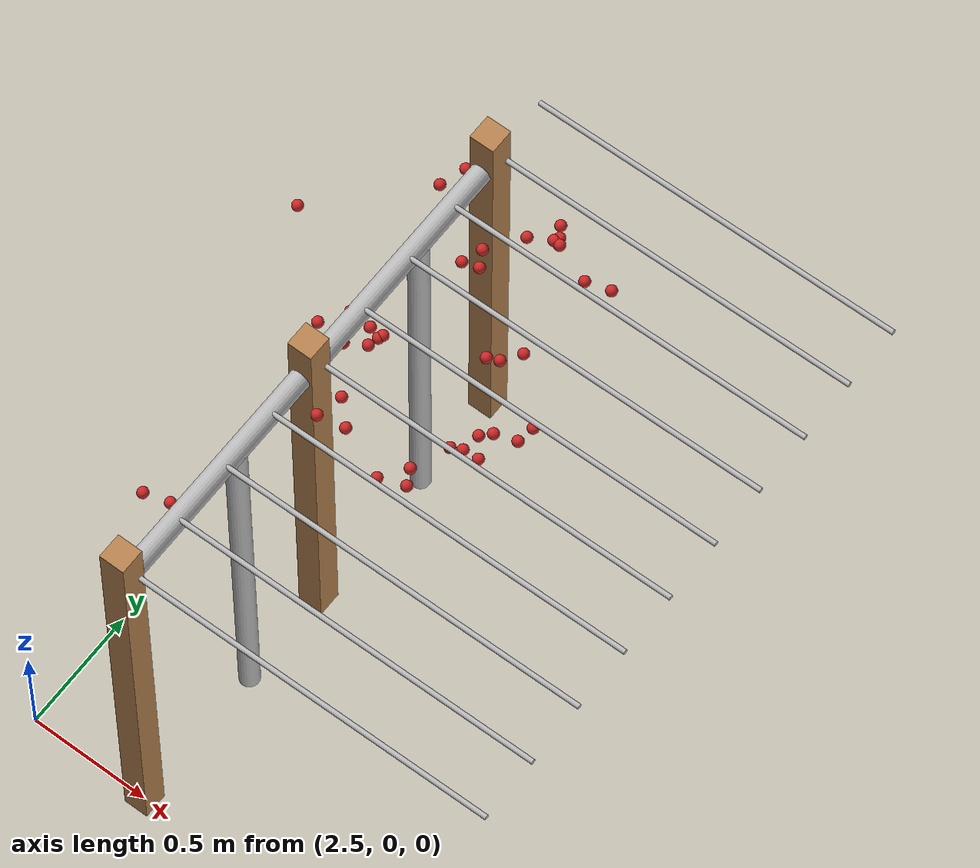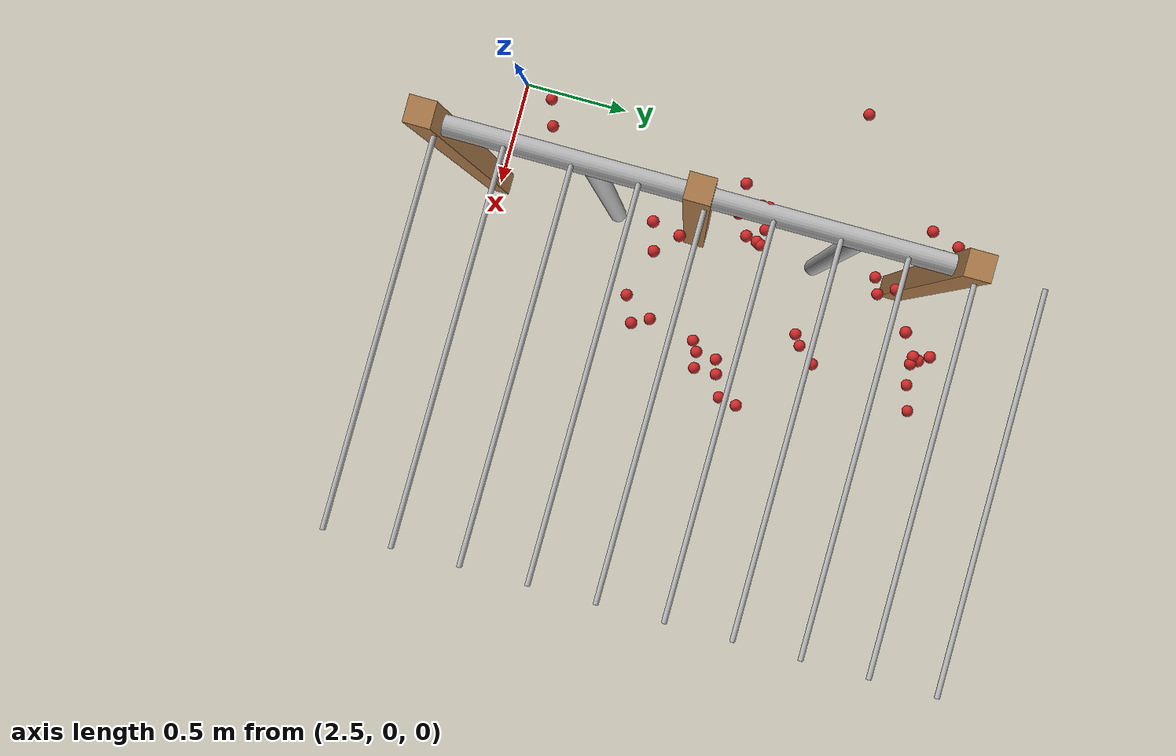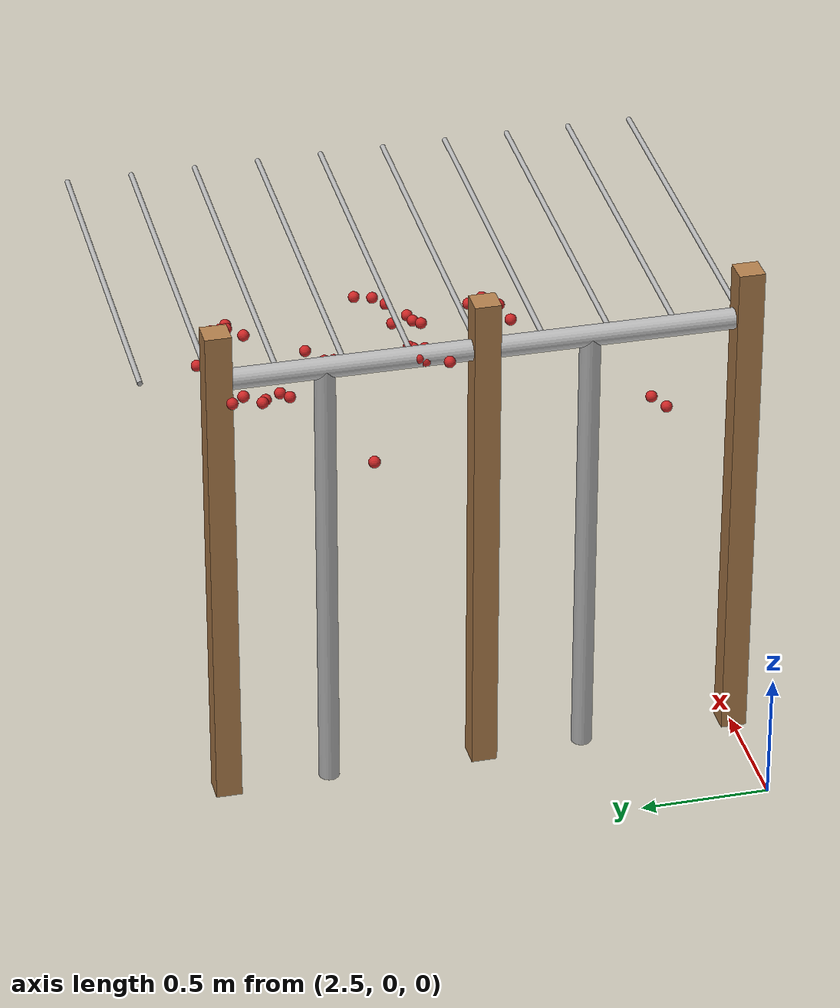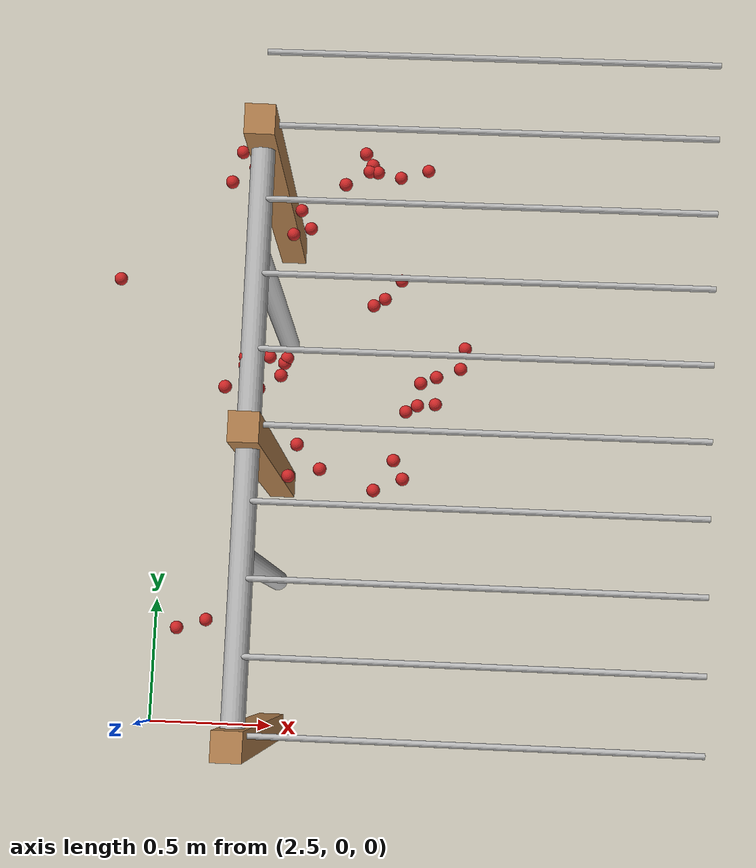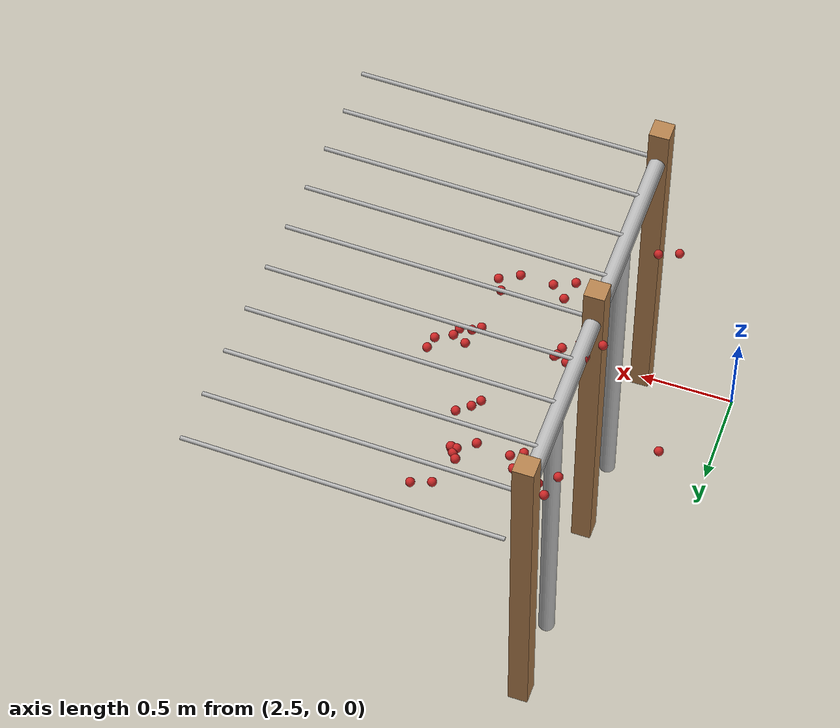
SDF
<sdf version="1.4">
 <model name="pergola">
  <include><name>post_6</name><pose>3.0 0.0 0 0 0 0</pose><uri>model://post</uri></include>
  <include><name>post_7</name><pose>3.0 1.0 0 0 0 0</pose><uri>model://post</uri></include>
  <include><name>post_8</name><pose>3.0 2.0 0 0 0 0</pose><uri>model://post</uri></include>
  <include><name>tree_5</name><pose>3.0 0.6 0 0 0 0</pose><uri>model://tree_trunk</uri></include>
  <include><name>tree_6</name><pose>3.0 1.6 0 0 0 0</pose><uri>model://tree_trunk</uri></include>
  <link name="baseBranch_5">
   <pose>3.0 0.5 1.8 1.5707963267948966 0 0</pose>
   <collision name="collision">
    <geometry><cylinder><radius>0.04</radius><length>1.0</length></cylinder></geometry>
   </collision>
   <visual name="visual">
    <geometry><cylinder><radius>0.04</radius><length>1.0</length></cylinder></geometry>
    <material>
     <script>
      <uri>model://tree_trunk/materials/scripts</uri>
      <uri>model://tree_trunk/materials/textures</uri>
      <name>Tree/Bark</name>
     </script>
    </material>
   </visual>
   <inertial>
    <mass>10</mass>
    <inertia>
     <ixx>0.8373333333333332</ixx>
     <ixy>0.0</ixy>
     <ixz>0.0</ixz>
     <iyy>0.8373333333333332</iyy>
     <iyz>0.0</iyz>
     <izz>0.008</izz>
    </inertia>
   </inertial>
  </link>
  <link name="baseBranch_6">
   <pose>3.0 1.5 1.8 1.5707963267948966 0 0</pose>
   <collision name="collision">
    <geometry><cylinder><radius>0.04</radius><length>1.0</length></cylinder></geometry>
   </collision>
   <visual name="visual">
    <geometry><cylinder><radius>0.04</radius><length>1.0</length></cylinder></geometry>
    <material>
     <script>
      <uri>model://tree_trunk/materials/scripts</uri>
      <uri>model://tree_trunk/materials/textures</uri>
      <name>Tree/Bark</name>
     </script>
    </material>
   </visual>
   <inertial>
    <mass>10</mass>
    <inertia>
     <ixx>0.8373333333333332</ixx>
     <ixy>0.0</ixy>
     <ixz>0.0</ixz>
     <iyy>0.8373333333333332</iyy>
     <iyz>0.0</iyz>
     <izz>0.008</izz>
    </inertia>
   </inertial>
  </link>
  <link name="vine_40">
   <pose>3.75 0.03 1.85 0 1.5374753309166493 0</pose>
   <collision name="collision">
    <geometry><cylinder><radius>0.01</radius><length>1.5008331019803633</length></cylinder></geometry>
   </collision>
   <visual name="visual">
    <geometry><cylinder><radius>0.01</radius><length>1.5008331019803633</length></cylinder></geometry>
    <material>
     <script>
      <uri>model://tree_trunk/materials/scripts</uri>
      <uri>model://tree_trunk/materials/textures</uri>
      <name>Tree/Bark</name>
     </script>
    </material>
   </visual>
   <inertial>
    <mass>5</mass>
    <inertia>
     <ixx>0.9386666666666668</ixx>
     <ixy>0.0</ixy>
     <ixz>0.0</ixz>
     <iyy>0.9386666666666668</iyy>
     <iyz>0.0</iyz>
     <izz>0.00025</izz>
    </inertia>
   </inertial>
  </link>
  <link name="vine_42">
   <pose>3.75 0.28 1.85 0 1.5374753309166493 0</pose>
   <collision name="collision">
    <geometry><cylinder><radius>0.01</radius><length>1.5008331019803633</length></cylinder></geometry>
   </collision>
   <visual name="visual">
    <geometry><cylinder><radius>0.01</radius><length>1.5008331019803633</length></cylinder></geometry>
    <material>
     <script>
      <uri>model://tree_trunk/materials/scripts</uri>
      <uri>model://tree_trunk/materials/textures</uri>
      <name>Tree/Bark</name>
     </script>
    </material>
   </visual>
   <inertial>
    <mass>5</mass>
    <inertia>
     <ixx>0.9386666666666668</ixx>
     <ixy>0.0</ixy>
     <ixz>0.0</ixz>
     <iyy>0.9386666666666668</iyy>
     <iyz>0.0</iyz>
     <izz>0.00025</izz>
    </inertia>
   </inertial>
  </link>
  <link name="vine_44">
   <pose>3.75 0.53 1.85 0 1.5374753309166493 0</pose>
   <collision name="collision">
    <geometry><cylinder><radius>0.01</radius><length>1.5008331019803633</length></cylinder></geometry>
   </collision>
   <visual name="visual">
    <geometry><cylinder><radius>0.01</radius><length>1.5008331019803633</length></cylinder></geometry>
    <material>
     <script>
      <uri>model://tree_trunk/materials/scripts</uri>
      <uri>model://tree_trunk/materials/textures</uri>
      <name>Tree/Bark</name>
     </script>
    </material>
   </visual>
   <inertial>
    <mass>5</mass>
    <inertia>
     <ixx>0.9386666666666668</ixx>
     <ixy>0.0</ixy>
     <ixz>0.0</ixz>
     <iyy>0.9386666666666668</iyy>
     <iyz>0.0</iyz>
     <izz>0.00025</izz>
    </inertia>
   </inertial>
  </link>
  <link name="vine_46">
   <pose>3.75 0.78 1.85 0 1.5374753309166493 0</pose>
   <collision name="collision">
    <geometry><cylinder><radius>0.01</radius><length>1.5008331019803633</length></cylinder></geometry>
   </collision>
   <visual name="visual">
    <geometry><cylinder><radius>0.01</radius><length>1.5008331019803633</length></cylinder></geometry>
    <material>
     <script>
      <uri>model://tree_trunk/materials/scripts</uri>
      <uri>model://tree_trunk/materials/textures</uri>
      <name>Tree/Bark</name>
     </script>
    </material>
   </visual>
   <inertial>
    <mass>5</mass>
    <inertia>
     <ixx>0.9386666666666668</ixx>
     <ixy>0.0</ixy>
     <ixz>0.0</ixz>
     <iyy>0.9386666666666668</iyy>
     <iyz>0.0</iyz>
     <izz>0.00025</izz>
    </inertia>
   </inertial>
  </link>
  <link name="vine_48">
   <pose>3.75 1.03 1.85 0 1.5374753309166493 0</pose>
   <collision name="collision">
    <geometry><cylinder><radius>0.01</radius><length>1.5008331019803633</length></cylinder></geometry>
   </collision>
   <visual name="visual">
    <geometry><cylinder><radius>0.01</radius><length>1.5008331019803633</length></cylinder></geometry>
    <material>
     <script>
      <uri>model://tree_trunk/materials/scripts</uri>
      <uri>model://tree_trunk/materials/textures</uri>
      <name>Tree/Bark</name>
     </script>
    </material>
   </visual>
   <inertial>
    <mass>5</mass>
    <inertia>
     <ixx>0.9386666666666668</ixx>
     <ixy>0.0</ixy>
     <ixz>0.0</ixz>
     <iyy>0.9386666666666668</iyy>
     <iyz>0.0</iyz>
     <izz>0.00025</izz>
    </inertia>
   </inertial>
  </link>
  <link name="vine_50">
   <pose>3.75 1.28 1.85 0 1.5374753309166493 0</pose>
   <collision name="collision">
    <geometry><cylinder><radius>0.01</radius><length>1.5008331019803633</length></cylinder></geometry>
   </collision>
   <visual name="visual">
    <geometry><cylinder><radius>0.01</radius><length>1.5008331019803633</length></cylinder></geometry>
    <material>
     <script>
      <uri>model://tree_trunk/materials/scripts</uri>
      <uri>model://tree_trunk/materials/textures</uri>
      <name>Tree/Bark</name>
     </script>
    </material>
   </visual>
   <inertial>
    <mass>5</mass>
    <inertia>
     <ixx>0.9386666666666668</ixx>
     <ixy>0.0</ixy>
     <ixz>0.0</ixz>
     <iyy>0.9386666666666668</iyy>
     <iyz>0.0</iyz>
     <izz>0.00025</izz>
    </inertia>
   </inertial>
  </link>
  <link name="vine_52">
   <pose>3.75 1.53 1.85 0 1.5374753309166493 0</pose>
   <collision name="collision">
    <geometry><cylinder><radius>0.01</radius><length>1.5008331019803633</length></cylinder></geometry>
   </collision>
   <visual name="visual">
    <geometry><cylinder><radius>0.01</radius><length>1.5008331019803633</length></cylinder></geometry>
    <material>
     <script>
      <uri>model://tree_trunk/materials/scripts</uri>
      <uri>model://tree_trunk/materials/textures</uri>
      <name>Tree/Bark</name>
     </script>
    </material>
   </visual>
   <inertial>
    <mass>5</mass>
    <inertia>
     <ixx>0.9386666666666668</ixx>
     <ixy>0.0</ixy>
     <ixz>0.0</ixz>
     <iyy>0.9386666666666668</iyy>
     <iyz>0.0</iyz>
     <izz>0.00025</izz>
    </inertia>
   </inertial>
  </link>
  <link name="vine_54">
   <pose>3.75 1.78 1.85 0 1.5374753309166493 0</pose>
   <collision name="collision">
    <geometry><cylinder><radius>0.01</radius><length>1.5008331019803633</length></cylinder></geometry>
   </collision>
   <visual name="visual">
    <geometry><cylinder><radius>0.01</radius><length>1.5008331019803633</length></cylinder></geometry>
    <material>
     <script>
      <uri>model://tree_trunk/materials/scripts</uri>
      <uri>model://tree_trunk/materials/textures</uri>
      <name>Tree/Bark</name>
     </script>
    </material>
   </visual>
   <inertial>
    <mass>5</mass>
    <inertia>
     <ixx>0.9386666666666668</ixx>
     <ixy>0.0</ixy>
     <ixz>0.0</ixz>
     <iyy>0.9386666666666668</iyy>
     <iyz>0.0</iyz>
     <izz>0.00025</izz>
    </inertia>
   </inertial>
  </link>
  <link name="vine_56">
   <pose>3.75 2.03 1.85 0 1.5374753309166493 0</pose>
   <collision name="collision">
    <geometry><cylinder><radius>0.01</radius><length>1.5008331019803633</length></cylinder></geometry>
   </collision>
   <visual name="visual">
    <geometry><cylinder><radius>0.01</radius><length>1.5008331019803633</length></cylinder></geometry>
    <material>
     <script>
      <uri>model://tree_trunk/materials/scripts</uri>
      <uri>model://tree_trunk/materials/textures</uri>
      <name>Tree/Bark</name>
     </script>
    </material>
   </visual>
   <inertial>
    <mass>5</mass>
    <inertia>
     <ixx>0.9386666666666668</ixx>
     <ixy>0.0</ixy>
     <ixz>0.0</ixz>
     <iyy>0.9386666666666668</iyy>
     <iyz>0.0</iyz>
     <izz>0.00025</izz>
    </inertia>
   </inertial>
  </link>
  <link name="vine_58">
   <pose>3.75 2.28 1.85 0 1.5374753309166493 0</pose>
   <collision name="collision">
    <geometry><cylinder><radius>0.01</radius><length>1.5008331019803633</length></cylinder></geometry>
   </collision>
   <visual name="visual">
    <geometry><cylinder><radius>0.01</radius><length>1.5008331019803633</length></cylinder></geometry>
    <material>
     <script>
      <uri>model://tree_trunk/materials/scripts</uri>
      <uri>model://tree_trunk/materials/textures</uri>
      <name>Tree/Bark</name>
     </script>
    </material>
   </visual>
   <inertial>
    <mass>5</mass>
    <inertia>
     <ixx>0.9386666666666668</ixx>
     <ixy>0.0</ixy>
     <ixz>0.0</ixz>
     <iyy>0.9386666666666668</iyy>
     <iyz>0.0</iyz>
     <izz>0.00025</izz>
    </inertia>
   </inertial>
  </link>
  <link name="fruit_13">
   <pose>3.6070455008905733 1.2300840165753737 1.6837658293401834 0 0 0</pose>
   <collision name="fruit_collision_13"><geometry><sphere><radius>0.022</radius></sphere></geometry></collision>
   <visual name="visual">
    <geometry><sphere><radius>0.022</radius></sphere></geometry>
    <material><script><name>Gazebo/Red</name></script></material>
   </visual>
   <inertial>
    <mass>0.05</mass>
    <inertia>
     <ixx>9.679999999999999e-06</ixx>
     <ixy>0.0</ixy>
     <ixz>0.0</ixz>
     <iyy>9.679999999999999e-06</iyy>
     <iyz>0.0</iyz>
     <izz>9.679999999999999e-06</izz>
    </inertia>
   </inertial>
   <sensor name="fruit_contact_13" type="contact">
    <plugin name="contact_plugin_13" filename="libcontact_plugin.so"/>
    <contact><collision>fruit_collision_13</collision><topic>fruit_contact_topic_13</topic></contact>
   </sensor>
  </link>
  <link name="fruit_24">
   <pose>2.917120511215333 1.1515800005456673 1.8088075330249582 0 0 0</pose>
   <collision name="fruit_collision_24"><geometry><sphere><radius>0.022</radius></sphere></geometry></collision>
   <visual name="visual">
    <geometry><sphere><radius>0.022</radius></sphere></geometry>
    <material><script><name>Gazebo/Red</name></script></material>
   </visual>
   <inertial>
    <mass>0.05</mass>
    <inertia>
     <ixx>9.679999999999999e-06</ixx>
     <ixy>0.0</ixy>
     <ixz>0.0</ixz>
     <iyy>9.679999999999999e-06</iyy>
     <iyz>0.0</iyz>
     <izz>9.679999999999999e-06</izz>
    </inertia>
   </inertial>
   <sensor name="fruit_contact_24" type="contact">
    <plugin name="contact_plugin_24" filename="libcontact_plugin.so"/>
    <contact><collision>fruit_collision_24</collision><topic>fruit_contact_topic_24</topic></contact>
   </sensor>
  </link>
  <link name="fruit_26">
   <pose>2.898086937691116 1.851858706649772 1.7446800675082137 0 0 0</pose>
   <collision name="fruit_collision_26"><geometry><sphere><radius>0.022</radius></sphere></geometry></collision>
   <visual name="visual">
    <geometry><sphere><radius>0.022</radius></sphere></geometry>
    <material><script><name>Gazebo/Red</name></script></material>
   </visual>
   <inertial>
    <mass>0.05</mass>
    <inertia>
     <ixx>9.679999999999999e-06</ixx>
     <ixy>0.0</ixy>
     <ixz>0.0</ixz>
     <iyy>9.679999999999999e-06</iyy>
     <iyz>0.0</iyz>
     <izz>9.679999999999999e-06</izz>
    </inertia>
   </inertial>
   <sensor name="fruit_contact_26" type="contact">
    <plugin name="contact_plugin_26" filename="libcontact_plugin.so"/>
    <contact><collision>fruit_collision_26</collision><topic>fruit_contact_topic_26</topic></contact>
   </sensor>
  </link>
  <link name="fruit_29">
   <pose>3.4585167013735956 1.939055679679138 1.5507530507339389 0 0 0</pose>
   <collision name="fruit_collision_29"><geometry><sphere><radius>0.022</radius></sphere></geometry></collision>
   <visual name="visual">
    <geometry><sphere><radius>0.022</radius></sphere></geometry>
    <material><script><name>Gazebo/Red</name></script></material>
   </visual>
   <inertial>
    <mass>0.05</mass>
    <inertia>
     <ixx>9.679999999999999e-06</ixx>
     <ixy>0.0</ixy>
     <ixz>0.0</ixz>
     <iyy>9.679999999999999e-06</iyy>
     <iyz>0.0</iyz>
     <izz>9.679999999999999e-06</izz>
    </inertia>
   </inertial>
   <sensor name="fruit_contact_29" type="contact">
    <plugin name="contact_plugin_29" filename="libcontact_plugin.so"/>
    <contact><collision>fruit_collision_29</collision><topic>fruit_contact_topic_29</topic></contact>
   </sensor>
  </link>
  <link name="fruit_42">
   <pose>3.1382005773098425 0.8662178532702873 1.8265389740597155 0 0 0</pose>
   <collision name="fruit_collision_42"><geometry><sphere><radius>0.022</radius></sphere></geometry></collision>
   <visual name="visual">
    <geometry><sphere><radius>0.022</radius></sphere></geometry>
    <material><script><name>Gazebo/Red</name></script></material>
   </visual>
   <inertial>
    <mass>0.05</mass>
    <inertia>
     <ixx>9.679999999999999e-06</ixx>
     <ixy>0.0</ixy>
     <ixz>0.0</ixz>
     <iyy>9.679999999999999e-06</iyy>
     <iyz>0.0</iyz>
     <izz>9.679999999999999e-06</izz>
    </inertia>
   </inertial>
   <sensor name="fruit_contact_42" type="contact">
    <plugin name="contact_plugin_42" filename="libcontact_plugin.so"/>
    <contact><collision>fruit_collision_42</collision><topic>fruit_contact_topic_42</topic></contact>
   </sensor>
  </link>
  <link name="fruit_47">
   <pose>2.7779957327651794 0.36682642251950465 1.5920235518906722 0 0 0</pose>
   <collision name="fruit_collision_47"><geometry><sphere><radius>0.022</radius></sphere></geometry></collision>
   <visual name="visual">
    <geometry><sphere><radius>0.022</radius></sphere></geometry>
    <material><script><name>Gazebo/Red</name></script></material>
   </visual>
   <inertial>
    <mass>0.05</mass>
    <inertia>
     <ixx>9.679999999999999e-06</ixx>
     <ixy>0.0</ixy>
     <ixz>0.0</ixz>
     <iyy>9.679999999999999e-06</iyy>
     <iyz>0.0</iyz>
     <izz>9.679999999999999e-06</izz>
    </inertia>
   </inertial>
   <sensor name="fruit_contact_47" type="contact">
    <plugin name="contact_plugin_47" filename="libcontact_plugin.so"/>
    <contact><collision>fruit_collision_47</collision><topic>fruit_contact_topic_47</topic></contact>
   </sensor>
  </link>
  <link name="fruit_55">
   <pose>3.0244347017362707 1.153597432893648 1.77924034173215 0 0 0</pose>
   <collision name="fruit_collision_55"><geometry><sphere><radius>0.022</radius></sphere></geometry></collision>
   <visual name="visual">
    <geometry><sphere><radius>0.022</radius></sphere></geometry>
    <material><script><name>Gazebo/Red</name></script></material>
   </visual>
   <inertial>
    <mass>0.05</mass>
    <inertia>
     <ixx>9.679999999999999e-06</ixx>
     <ixy>0.0</ixy>
     <ixz>0.0</ixz>
     <iyy>9.679999999999999e-06</iyy>
     <iyz>0.0</iyz>
     <izz>9.679999999999999e-06</izz>
    </inertia>
   </inertial>
   <sensor name="fruit_contact_55" type="contact">
    <plugin name="contact_plugin_55" filename="libcontact_plugin.so"/>
    <contact><collision>fruit_collision_55</collision><topic>fruit_contact_topic_55</topic></contact>
   </sensor>
  </link>
  <link name="fruit_88">
   <pose>3.5094107822425316 1.1161633936437858 1.6393341582841479 0 0 0</pose>
   <collision name="fruit_collision_88"><geometry><sphere><radius>0.022</radius></sphere></geometry></collision>
   <visual name="visual">
    <geometry><sphere><radius>0.022</radius></sphere></geometry>
    <material><script><name>Gazebo/Red</name></script></material>
   </visual>
   <inertial>
    <mass>0.05</mass>
    <inertia>
     <ixx>9.679999999999999e-06</ixx>
     <ixy>0.0</ixy>
     <ixz>0.0</ixz>
     <iyy>9.679999999999999e-06</iyy>
     <iyz>0.0</iyz>
     <izz>9.679999999999999e-06</izz>
    </inertia>
   </inertial>
   <sensor name="fruit_contact_88" type="contact">
    <plugin name="contact_plugin_88" filename="libcontact_plugin.so"/>
    <contact><collision>fruit_collision_88</collision><topic>fruit_contact_topic_88</topic></contact>
   </sensor>
  </link>
  <link name="fruit_122">
   <pose>3.1037765207381027 1.7078859380675588 1.6309771468473413 0 0 0</pose>
   <collision name="fruit_collision_122"><geometry><sphere><radius>0.022</radius></sphere></geometry></collision>
   <visual name="visual">
    <geometry><sphere><radius>0.022</radius></sphere></geometry>
    <material><script><name>Gazebo/Red</name></script></material>
   </visual>
   <inertial>
    <mass>0.05</mass>
    <inertia>
     <ixx>9.679999999999999e-06</ixx>
     <ixy>0.0</ixy>
     <ixz>0.0</ixz>
     <iyy>9.679999999999999e-06</iyy>
     <iyz>0.0</iyz>
     <izz>9.679999999999999e-06</izz>
    </inertia>
   </inertial>
   <sensor name="fruit_contact_122" type="contact">
    <plugin name="contact_plugin_122" filename="libcontact_plugin.so"/>
    <contact><collision>fruit_collision_122</collision><topic>fruit_contact_topic_122</topic></contact>
   </sensor>
  </link>
  <link name="fruit_133">
   <pose>3.3854332978373565 1.4799477815049202 1.5982125163389522 0 0 0</pose>
   <collision name="fruit_collision_133"><geometry><sphere><radius>0.022</radius></sphere></geometry></collision>
   <visual name="visual">
    <geometry><sphere><radius>0.022</radius></sphere></geometry>
    <material><script><name>Gazebo/Red</name></script></material>
   </visual>
   <inertial>
    <mass>0.05</mass>
    <inertia>
     <ixx>9.679999999999999e-06</ixx>
     <ixy>0.0</ixy>
     <ixz>0.0</ixz>
     <iyy>9.679999999999999e-06</iyy>
     <iyz>0.0</iyz>
     <izz>9.679999999999999e-06</izz>
    </inertia>
   </inertial>
   <sensor name="fruit_contact_133" type="contact">
    <plugin name="contact_plugin_133" filename="libcontact_plugin.so"/>
    <contact><collision>fruit_collision_133</collision><topic>fruit_contact_topic_133</topic></contact>
   </sensor>
  </link>
  <link name="fruit_139">
   <pose>3.4138636948243413 0.8392183826972964 1.7345323251170426 0 0 0</pose>
   <collision name="fruit_collision_139"><geometry><sphere><radius>0.022</radius></sphere></geometry></collision>
   <visual name="visual">
    <geometry><sphere><radius>0.022</radius></sphere></geometry>
    <material><script><name>Gazebo/Red</name></script></material>
   </visual>
   <inertial>
    <mass>0.05</mass>
    <inertia>
     <ixx>9.679999999999999e-06</ixx>
     <ixy>0.0</ixy>
     <ixz>0.0</ixz>
     <iyy>9.679999999999999e-06</iyy>
     <iyz>0.0</iyz>
     <izz>9.679999999999999e-06</izz>
    </inertia>
   </inertial>
   <sensor name="fruit_contact_139" type="contact">
    <plugin name="contact_plugin_139" filename="libcontact_plugin.so"/>
    <contact><collision>fruit_collision_139</collision><topic>fruit_contact_topic_139</topic></contact>
   </sensor>
  </link>
  <link name="fruit_150">
   <pose>3.280158246227054 1.8420424714277035 1.8107419304058632 0 0 0</pose>
   <collision name="fruit_collision_150"><geometry><sphere><radius>0.022</radius></sphere></geometry></collision>
   <visual name="visual">
    <geometry><sphere><radius>0.022</radius></sphere></geometry>
    <material><script><name>Gazebo/Red</name></script></material>
   </visual>
   <inertial>
    <mass>0.05</mass>
    <inertia>
     <ixx>9.679999999999999e-06</ixx>
     <ixy>0.0</ixy>
     <ixz>0.0</ixz>
     <iyy>9.679999999999999e-06</iyy>
     <iyz>0.0</iyz>
     <izz>9.679999999999999e-06</izz>
    </inertia>
   </inertial>
   <sensor name="fruit_contact_150" type="contact">
    <plugin name="contact_plugin_150" filename="libcontact_plugin.so"/>
    <contact><collision>fruit_collision_150</collision><topic>fruit_contact_topic_150</topic></contact>
   </sensor>
  </link>
  <link name="fruit_154">
   <pose>2.5332713940371154 1.5233066768944616 1.66354003682544 0 0 0</pose>
   <collision name="fruit_collision_154"><geometry><sphere><radius>0.022</radius></sphere></geometry></collision>
   <visual name="visual">
    <geometry><sphere><radius>0.022</radius></sphere></geometry>
    <material><script><name>Gazebo/Red</name></script></material>
   </visual>
   <inertial>
    <mass>0.05</mass>
    <inertia>
     <ixx>9.679999999999999e-06</ixx>
     <ixy>0.0</ixy>
     <ixz>0.0</ixz>
     <iyy>9.679999999999999e-06</iyy>
     <iyz>0.0</iyz>
     <izz>9.679999999999999e-06</izz>
    </inertia>
   </inertial>
   <sensor name="fruit_contact_154" type="contact">
    <plugin name="contact_plugin_154" filename="libcontact_plugin.so"/>
    <contact><collision>fruit_collision_154</collision><topic>fruit_contact_topic_154</topic></contact>
   </sensor>
  </link>
  <link name="fruit_160">
   <pose>3.3845578497210353 1.8891554138268125 1.8030403169744178 0 0 0</pose>
   <collision name="fruit_collision_160"><geometry><sphere><radius>0.022</radius></sphere></geometry></collision>
   <visual name="visual">
    <geometry><sphere><radius>0.022</radius></sphere></geometry>
    <material><script><name>Gazebo/Red</name></script></material>
   </visual>
   <inertial>
    <mass>0.05</mass>
    <inertia>
     <ixx>9.679999999999999e-06</ixx>
     <ixy>0.0</ixy>
     <ixz>0.0</ixz>
     <iyy>9.679999999999999e-06</iyy>
     <iyz>0.0</iyz>
     <izz>9.679999999999999e-06</izz>
    </inertia>
   </inertial>
   <sensor name="fruit_contact_160" type="contact">
    <plugin name="contact_plugin_160" filename="libcontact_plugin.so"/>
    <contact><collision>fruit_collision_160</collision><topic>fruit_contact_topic_160</topic></contact>
   </sensor>
  </link>
  <link name="fruit_167">
   <pose>3.6987269483106022 1.3314125085197401 1.6769843129602904 0 0 0</pose>
   <collision name="fruit_collision_167"><geometry><sphere><radius>0.022</radius></sphere></geometry></collision>
   <visual name="visual">
    <geometry><sphere><radius>0.022</radius></sphere></geometry>
    <material><script><name>Gazebo/Red</name></script></material>
   </visual>
   <inertial>
    <mass>0.05</mass>
    <inertia>
     <ixx>9.679999999999999e-06</ixx>
     <ixy>0.0</ixy>
     <ixz>0.0</ixz>
     <iyy>9.679999999999999e-06</iyy>
     <iyz>0.0</iyz>
     <izz>9.679999999999999e-06</izz>
    </inertia>
   </inertial>
   <sensor name="fruit_contact_167" type="contact">
    <plugin name="contact_plugin_167" filename="libcontact_plugin.so"/>
    <contact><collision>fruit_collision_167</collision><topic>fruit_contact_topic_167</topic></contact>
   </sensor>
  </link>
  <link name="fruit_180">
   <pose>3.0150394310402158 1.2524880325697603 1.805783368348586 0 0 0</pose>
   <collision name="fruit_collision_180"><geometry><sphere><radius>0.022</radius></sphere></geometry></collision>
   <visual name="visual">
    <geometry><sphere><radius>0.022</radius></sphere></geometry>
    <material><script><name>Gazebo/Red</name></script></material>
   </visual>
   <inertial>
    <mass>0.05</mass>
    <inertia>
     <ixx>9.679999999999999e-06</ixx>
     <ixy>0.0</ixy>
     <ixz>0.0</ixz>
     <iyy>9.679999999999999e-06</iyy>
     <iyz>0.0</iyz>
     <izz>9.679999999999999e-06</izz>
    </inertia>
   </inertial>
   <sensor name="fruit_contact_180" type="contact">
    <plugin name="contact_plugin_180" filename="libcontact_plugin.so"/>
    <contact><collision>fruit_collision_180</collision><topic>fruit_contact_topic_180</topic></contact>
   </sensor>
  </link>
  <link name="fruit_196">
   <pose>3.4225927697186673 1.5077483263816136 1.5781392333230295 0 0 0</pose>
   <collision name="fruit_collision_196"><geometry><sphere><radius>0.022</radius></sphere></geometry></collision>
   <visual name="visual">
    <geometry><sphere><radius>0.022</radius></sphere></geometry>
    <material><script><name>Gazebo/Red</name></script></material>
   </visual>
   <inertial>
    <mass>0.05</mass>
    <inertia>
     <ixx>9.679999999999999e-06</ixx>
     <ixy>0.0</ixy>
     <ixz>0.0</ixz>
     <iyy>9.679999999999999e-06</iyy>
     <iyz>0.0</iyz>
     <izz>9.679999999999999e-06</izz>
    </inertia>
   </inertial>
   <sensor name="fruit_contact_196" type="contact">
    <plugin name="contact_plugin_196" filename="libcontact_plugin.so"/>
    <contact><collision>fruit_collision_196</collision><topic>fruit_contact_topic_196</topic></contact>
   </sensor>
  </link>
  <link name="fruit_202">
   <pose>3.094902093531147 1.201172119151739 1.7734514283640548 0 0 0</pose>
   <collision name="fruit_collision_202"><geometry><sphere><radius>0.022</radius></sphere></geometry></collision>
   <visual name="visual">
    <geometry><sphere><radius>0.022</radius></sphere></geometry>
    <material><script><name>Gazebo/Red</name></script></material>
   </visual>
   <inertial>
    <mass>0.05</mass>
    <inertia>
     <ixx>9.679999999999999e-06</ixx>
     <ixy>0.0</ixy>
     <ixz>0.0</ixz>
     <iyy>9.679999999999999e-06</iyy>
     <iyz>0.0</iyz>
     <izz>9.679999999999999e-06</izz>
    </inertia>
   </inertial>
   <sensor name="fruit_contact_202" type="contact">
    <plugin name="contact_plugin_202" filename="libcontact_plugin.so"/>
    <contact><collision>fruit_collision_202</collision><topic>fruit_contact_topic_202</topic></contact>
   </sensor>
  </link>
  <link name="fruit_212">
   <pose>3.1621282554759613 0.9700209263742554 1.8261377971677826 0 0 0</pose>
   <collision name="fruit_collision_212"><geometry><sphere><radius>0.022</radius></sphere></geometry></collision>
   <visual name="visual">
    <geometry><sphere><radius>0.022</radius></sphere></geometry>
    <material><script><name>Gazebo/Red</name></script></material>
   </visual>
   <inertial>
    <mass>0.05</mass>
    <inertia>
     <ixx>9.679999999999999e-06</ixx>
     <ixy>0.0</ixy>
     <ixz>0.0</ixz>
     <iyy>9.679999999999999e-06</iyy>
     <iyz>0.0</iyz>
     <izz>9.679999999999999e-06</izz>
    </inertia>
   </inertial>
   <sensor name="fruit_contact_212" type="contact">
    <plugin name="contact_plugin_212" filename="libcontact_plugin.so"/>
    <contact><collision>fruit_collision_212</collision><topic>fruit_contact_topic_212</topic></contact>
   </sensor>
  </link>
  <link name="fruit_221">
   <pose>2.972936768662098 1.9072773614292877 1.735332152135021 0 0 0</pose>
   <collision name="fruit_collision_221"><geometry><sphere><radius>0.022</radius></sphere></geometry></collision>
   <visual name="visual">
    <geometry><sphere><radius>0.022</radius></sphere></geometry>
    <material><script><name>Gazebo/Red</name></script></material>
   </visual>
   <inertial>
    <mass>0.05</mass>
    <inertia>
     <ixx>9.679999999999999e-06</ixx>
     <ixy>0.0</ixy>
     <ixz>0.0</ixz>
     <iyy>9.679999999999999e-06</iyy>
     <iyz>0.0</iyz>
     <izz>9.679999999999999e-06</izz>
    </inertia>
   </inertial>
   <sensor name="fruit_contact_221" type="contact">
    <plugin name="contact_plugin_221" filename="libcontact_plugin.so"/>
    <contact><collision>fruit_collision_221</collision><topic>fruit_contact_topic_221</topic></contact>
   </sensor>
  </link>
  <link name="fruit_237">
   <pose>2.9284135741813957 1.95707892950702 1.737734749686442 0 0 0</pose>
   <collision name="fruit_collision_237"><geometry><sphere><radius>0.022</radius></sphere></geometry></collision>
   <visual name="visual">
    <geometry><sphere><radius>0.022</radius></sphere></geometry>
    <material><script><name>Gazebo/Red</name></script></material>
   </visual>
   <inertial>
    <mass>0.05</mass>
    <inertia>
     <ixx>9.679999999999999e-06</ixx>
     <ixy>0.0</ixy>
     <ixz>0.0</ixz>
     <iyy>9.679999999999999e-06</iyy>
     <iyz>0.0</iyz>
     <izz>9.679999999999999e-06</izz>
    </inertia>
   </inertial>
   <sensor name="fruit_contact_237" type="contact">
    <plugin name="contact_plugin_237" filename="libcontact_plugin.so"/>
    <contact><collision>fruit_collision_237</collision><topic>fruit_contact_topic_237</topic></contact>
   </sensor>
  </link>
  <link name="fruit_238">
   <pose>2.9773925539750916 1.2272454604954492 1.791368946226316 0 0 0</pose>
   <collision name="fruit_collision_238"><geometry><sphere><radius>0.022</radius></sphere></geometry></collision>
   <visual name="visual">
    <geometry><sphere><radius>0.022</radius></sphere></geometry>
    <material><script><name>Gazebo/Red</name></script></material>
   </visual>
   <inertial>
    <mass>0.05</mass>
    <inertia>
     <ixx>9.679999999999999e-06</ixx>
     <ixy>0.0</ixy>
     <ixz>0.0</ixz>
     <iyy>9.679999999999999e-06</iyy>
     <iyz>0.0</iyz>
     <izz>9.679999999999999e-06</izz>
    </inertia>
   </inertial>
   <sensor name="fruit_contact_238" type="contact">
    <plugin name="contact_plugin_238" filename="libcontact_plugin.so"/>
    <contact><collision>fruit_collision_238</collision><topic>fruit_contact_topic_238</topic></contact>
   </sensor>
  </link>
  <link name="fruit_240">
   <pose>3.5551368114321265 1.21658038435728 1.626251568671813 0 0 0</pose>
   <collision name="fruit_collision_240"><geometry><sphere><radius>0.022</radius></sphere></geometry></collision>
   <visual name="visual">
    <geometry><sphere><radius>0.022</radius></sphere></geometry>
    <material><script><name>Gazebo/Red</name></script></material>
   </visual>
   <inertial>
    <mass>0.05</mass>
    <inertia>
     <ixx>9.679999999999999e-06</ixx>
     <ixy>0.0</ixy>
     <ixz>0.0</ixz>
     <iyy>9.679999999999999e-06</iyy>
     <iyz>0.0</iyz>
     <izz>9.679999999999999e-06</izz>
    </inertia>
   </inertial>
   <sensor name="fruit_contact_240" type="contact">
    <plugin name="contact_plugin_240" filename="libcontact_plugin.so"/>
    <contact><collision>fruit_collision_240</collision><topic>fruit_contact_topic_240</topic></contact>
   </sensor>
  </link>
  <link name="fruit_251">
   <pose>3.6864038083729636 1.263128370723643 1.671284777240697 0 0 0</pose>
   <collision name="fruit_collision_251"><geometry><sphere><radius>0.022</radius></sphere></geometry></collision>
   <visual name="visual">
    <geometry><sphere><radius>0.022</radius></sphere></geometry>
    <material><script><name>Gazebo/Red</name></script></material>
   </visual>
   <inertial>
    <mass>0.05</mass>
    <inertia>
     <ixx>9.679999999999999e-06</ixx>
     <ixy>0.0</ixy>
     <ixz>0.0</ixz>
     <iyy>9.679999999999999e-06</iyy>
     <iyz>0.0</iyz>
     <izz>9.679999999999999e-06</izz>
    </inertia>
   </inertial>
   <sensor name="fruit_contact_251" type="contact">
    <plugin name="contact_plugin_251" filename="libcontact_plugin.so"/>
    <contact><collision>fruit_collision_251</collision><topic>fruit_contact_topic_251</topic></contact>
   </sensor>
  </link>
  <link name="fruit_265">
   <pose>3.3574921760088037 1.8916243632347034 1.8026224546753111 0 0 0</pose>
   <collision name="fruit_collision_265"><geometry><sphere><radius>0.022</radius></sphere></geometry></collision>
   <visual name="visual">
    <geometry><sphere><radius>0.022</radius></sphere></geometry>
    <material><script><name>Gazebo/Red</name></script></material>
   </visual>
   <inertial>
    <mass>0.05</mass>
    <inertia>
     <ixx>9.679999999999999e-06</ixx>
     <ixy>0.0</ixy>
     <ixz>0.0</ixz>
     <iyy>9.679999999999999e-06</iyy>
     <iyz>0.0</iyz>
     <izz>9.679999999999999e-06</izz>
    </inertia>
   </inertial>
   <sensor name="fruit_contact_265" type="contact">
    <plugin name="contact_plugin_265" filename="libcontact_plugin.so"/>
    <contact><collision>fruit_collision_265</collision><topic>fruit_contact_topic_265</topic></contact>
   </sensor>
  </link>
  <link name="fruit_276">
   <pose>3.113309508210805 1.2580284965034978 1.7783928749012863 0 0 0</pose>
   <collision name="fruit_collision_276"><geometry><sphere><radius>0.022</radius></sphere></geometry></collision>
   <visual name="visual">
    <geometry><sphere><radius>0.022</radius></sphere></geometry>
    <material><script><name>Gazebo/Red</name></script></material>
   </visual>
   <inertial>
    <mass>0.05</mass>
    <inertia>
     <ixx>9.679999999999999e-06</ixx>
     <ixy>0.0</ixy>
     <ixz>0.0</ixz>
     <iyy>9.679999999999999e-06</iyy>
     <iyz>0.0</iyz>
     <izz>9.679999999999999e-06</izz>
    </inertia>
   </inertial>
   <sensor name="fruit_contact_276" type="contact">
    <plugin name="contact_plugin_276" filename="libcontact_plugin.so"/>
    <contact><collision>fruit_collision_276</collision><topic>fruit_contact_topic_276</topic></contact>
   </sensor>
  </link>
  <link name="fruit_278">
   <pose>3.552111640575259 1.96879584121675 1.5461457431914392 0 0 0</pose>
   <collision name="fruit_collision_278"><geometry><sphere><radius>0.022</radius></sphere></geometry></collision>
   <visual name="visual">
    <geometry><sphere><radius>0.022</radius></sphere></geometry>
    <material><script><name>Gazebo/Red</name></script></material>
   </visual>
   <inertial>
    <mass>0.05</mass>
    <inertia>
     <ixx>9.679999999999999e-06</ixx>
     <ixy>0.0</ixy>
     <ixz>0.0</ixz>
     <iyy>9.679999999999999e-06</iyy>
     <iyz>0.0</iyz>
     <izz>9.679999999999999e-06</izz>
    </inertia>
   </inertial>
   <sensor name="fruit_contact_278" type="contact">
    <plugin name="contact_plugin_278" filename="libcontact_plugin.so"/>
    <contact><collision>fruit_collision_278</collision><topic>fruit_contact_topic_278</topic></contact>
   </sensor>
  </link>
  <link name="fruit_321">
   <pose>3.10527422767297 1.243183803596371 1.7731612326279826 0 0 0</pose>
   <collision name="fruit_collision_321"><geometry><sphere><radius>0.022</radius></sphere></geometry></collision>
   <visual name="visual">
    <geometry><sphere><radius>0.022</radius></sphere></geometry>
    <material><script><name>Gazebo/Red</name></script></material>
   </visual>
   <inertial>
    <mass>0.05</mass>
    <inertia>
     <ixx>9.679999999999999e-06</ixx>
     <ixy>0.0</ixy>
     <ixz>0.0</ixz>
     <iyy>9.679999999999999e-06</iyy>
     <iyz>0.0</iyz>
     <izz>9.679999999999999e-06</izz>
    </inertia>
   </inertial>
   <sensor name="fruit_contact_321" type="contact">
    <plugin name="contact_plugin_321" filename="libcontact_plugin.so"/>
    <contact><collision>fruit_collision_321</collision><topic>fruit_contact_topic_321</topic></contact>
   </sensor>
  </link>
  <link name="fruit_350">
   <pose>3.1264783508923597 1.7943082370600911 1.6177022400953804 0 0 0</pose>
   <collision name="fruit_collision_350"><geometry><sphere><radius>0.022</radius></sphere></geometry></collision>
   <visual name="visual">
    <geometry><sphere><radius>0.022</radius></sphere></geometry>
    <material><script><name>Gazebo/Red</name></script></material>
   </visual>
   <inertial>
    <mass>0.05</mass>
    <inertia>
     <ixx>9.679999999999999e-06</ixx>
     <ixy>0.0</ixy>
     <ixz>0.0</ixz>
     <iyy>9.679999999999999e-06</iyy>
     <iyz>0.0</iyz>
     <izz>9.679999999999999e-06</izz>
    </inertia>
   </inertial>
   <sensor name="fruit_contact_350" type="contact">
    <plugin name="contact_plugin_350" filename="libcontact_plugin.so"/>
    <contact><collision>fruit_collision_350</collision><topic>fruit_contact_topic_350</topic></contact>
   </sensor>
  </link>
  <link name="fruit_351">
   <pose>3.5076048905870243 0.8814698903042604 1.7209397668681488 0 0 0</pose>
   <collision name="fruit_collision_351"><geometry><sphere><radius>0.022</radius></sphere></geometry></collision>
   <visual name="visual">
    <geometry><sphere><radius>0.022</radius></sphere></geometry>
    <material><script><name>Gazebo/Red</name></script></material>
   </visual>
   <inertial>
    <mass>0.05</mass>
    <inertia>
     <ixx>9.679999999999999e-06</ixx>
     <ixy>0.0</ixy>
     <ixz>0.0</ixz>
     <iyy>9.679999999999999e-06</iyy>
     <iyz>0.0</iyz>
     <izz>9.679999999999999e-06</izz>
    </inertia>
   </inertial>
   <sensor name="fruit_contact_351" type="contact">
    <plugin name="contact_plugin_351" filename="libcontact_plugin.so"/>
    <contact><collision>fruit_collision_351</collision><topic>fruit_contact_topic_351</topic></contact>
   </sensor>
  </link>
  <link name="fruit_362">
   <pose>3.3794857004349526 1.8942052294879574 1.792748516244141 0 0 0</pose>
   <collision name="fruit_collision_362"><geometry><sphere><radius>0.022</radius></sphere></geometry></collision>
   <visual name="visual">
    <geometry><sphere><radius>0.022</radius></sphere></geometry>
    <material><script><name>Gazebo/Red</name></script></material>
   </visual>
   <inertial>
    <mass>0.05</mass>
    <inertia>
     <ixx>9.679999999999999e-06</ixx>
     <ixy>0.0</ixy>
     <ixz>0.0</ixz>
     <iyy>9.679999999999999e-06</iyy>
     <iyz>0.0</iyz>
     <izz>9.679999999999999e-06</izz>
    </inertia>
   </inertial>
   <sensor name="fruit_contact_362" type="contact">
    <plugin name="contact_plugin_362" filename="libcontact_plugin.so"/>
    <contact><collision>fruit_collision_362</collision><topic>fruit_contact_topic_362</topic></contact>
   </sensor>
  </link>
  <link name="fruit_378">
   <pose>2.8731514637785946 0.3969122417490969 1.584272343243843 0 0 0</pose>
   <collision name="fruit_collision_378"><geometry><sphere><radius>0.022</radius></sphere></geometry></collision>
   <visual name="visual">
    <geometry><sphere><radius>0.022</radius></sphere></geometry>
    <material><script><name>Gazebo/Red</name></script></material>
   </visual>
   <inertial>
    <mass>0.05</mass>
    <inertia>
     <ixx>9.679999999999999e-06</ixx>
     <ixy>0.0</ixy>
     <ixz>0.0</ixz>
     <iyy>9.679999999999999e-06</iyy>
     <iyz>0.0</iyz>
     <izz>9.679999999999999e-06</izz>
    </inertia>
   </inertial>
   <sensor name="fruit_contact_378" type="contact">
    <plugin name="contact_plugin_378" filename="libcontact_plugin.so"/>
    <contact><collision>fruit_collision_378</collision><topic>fruit_contact_topic_378</topic></contact>
   </sensor>
  </link>
  <link name="fruit_381">
   <pose>3.0164492340299565 1.212463373346701 1.7990822242032163 0 0 0</pose>
   <collision name="fruit_collision_381"><geometry><sphere><radius>0.022</radius></sphere></geometry></collision>
   <visual name="visual">
    <geometry><sphere><radius>0.022</radius></sphere></geometry>
    <material><script><name>Gazebo/Red</name></script></material>
   </visual>
   <inertial>
    <mass>0.05</mass>
    <inertia>
     <ixx>9.679999999999999e-06</ixx>
     <ixy>0.0</ixy>
     <ixz>0.0</ixz>
     <iyy>9.679999999999999e-06</iyy>
     <iyz>0.0</iyz>
     <izz>9.679999999999999e-06</izz>
    </inertia>
   </inertial>
   <sensor name="fruit_contact_381" type="contact">
    <plugin name="contact_plugin_381" filename="libcontact_plugin.so"/>
    <contact><collision>fruit_collision_381</collision><topic>fruit_contact_topic_381</topic></contact>
   </sensor>
  </link>
  <link name="fruit_386">
   <pose>3.47554380152041 0.9422317792214085 1.7183711686689045 0 0 0</pose>
   <collision name="fruit_collision_386"><geometry><sphere><radius>0.022</radius></sphere></geometry></collision>
   <visual name="visual">
    <geometry><sphere><radius>0.022</radius></sphere></geometry>
    <material><script><name>Gazebo/Red</name></script></material>
   </visual>
   <inertial>
    <mass>0.05</mass>
    <inertia>
     <ixx>9.679999999999999e-06</ixx>
     <ixy>0.0</ixy>
     <ixz>0.0</ixz>
     <iyy>9.679999999999999e-06</iyy>
     <iyz>0.0</iyz>
     <izz>9.679999999999999e-06</izz>
    </inertia>
   </inertial>
   <sensor name="fruit_contact_386" type="contact">
    <plugin name="contact_plugin_386" filename="libcontact_plugin.so"/>
    <contact><collision>fruit_collision_386</collision><topic>fruit_contact_topic_386</topic></contact>
   </sensor>
  </link>
  <link name="fruit_428">
   <pose>3.2383039416268034 0.8948207956684621 1.805684779386489 0 0 0</pose>
   <collision name="fruit_collision_428"><geometry><sphere><radius>0.022</radius></sphere></geometry></collision>
   <visual name="visual">
    <geometry><sphere><radius>0.022</radius></sphere></geometry>
    <material><script><name>Gazebo/Red</name></script></material>
   </visual>
   <inertial>
    <mass>0.05</mass>
    <inertia>
     <ixx>9.679999999999999e-06</ixx>
     <ixy>0.0</ixy>
     <ixz>0.0</ixz>
     <iyy>9.679999999999999e-06</iyy>
     <iyz>0.0</iyz>
     <izz>9.679999999999999e-06</izz>
    </inertia>
   </inertial>
   <sensor name="fruit_contact_428" type="contact">
    <plugin name="contact_plugin_428" filename="libcontact_plugin.so"/>
    <contact><collision>fruit_collision_428</collision><topic>fruit_contact_topic_428</topic></contact>
   </sensor>
  </link>
  <link name="fruit_430">
   <pose>3.6071470665675833 1.146871013761263 1.6234610475721984 0 0 0</pose>
   <collision name="fruit_collision_430"><geometry><sphere><radius>0.022</radius></sphere></geometry></collision>
   <visual name="visual">
    <geometry><sphere><radius>0.022</radius></sphere></geometry>
    <material><script><name>Gazebo/Red</name></script></material>
   </visual>
   <inertial>
    <mass>0.05</mass>
    <inertia>
     <ixx>9.679999999999999e-06</ixx>
     <ixy>0.0</ixy>
     <ixz>0.0</ixz>
     <iyy>9.679999999999999e-06</iyy>
     <iyz>0.0</iyz>
     <izz>9.679999999999999e-06</izz>
    </inertia>
   </inertial>
   <sensor name="fruit_contact_430" type="contact">
    <plugin name="contact_plugin_430" filename="libcontact_plugin.so"/>
    <contact><collision>fruit_collision_430</collision><topic>fruit_contact_topic_430</topic></contact>
   </sensor>
  </link>
  <link name="fruit_433">
   <pose>2.9781910765083093 1.253037809996812 1.8049852941219526 0 0 0</pose>
   <collision name="fruit_collision_433"><geometry><sphere><radius>0.022</radius></sphere></geometry></collision>
   <visual name="visual">
    <geometry><sphere><radius>0.022</radius></sphere></geometry>
    <material><script><name>Gazebo/Red</name></script></material>
   </visual>
   <inertial>
    <mass>0.05</mass>
    <inertia>
     <ixx>9.679999999999999e-06</ixx>
     <ixy>0.0</ixy>
     <ixz>0.0</ixz>
     <iyy>9.679999999999999e-06</iyy>
     <iyz>0.0</iyz>
     <izz>9.679999999999999e-06</izz>
    </inertia>
   </inertial>
   <sensor name="fruit_contact_433" type="contact">
    <plugin name="contact_plugin_433" filename="libcontact_plugin.so"/>
    <contact><collision>fruit_collision_433</collision><topic>fruit_contact_topic_433</topic></contact>
   </sensor>
  </link>
  <link name="fruit_450">
   <pose>3.4771019697506507 1.5694639343893857 1.5978160389943317 0 0 0</pose>
   <collision name="fruit_collision_450"><geometry><sphere><radius>0.022</radius></sphere></geometry></collision>
   <visual name="visual">
    <geometry><sphere><radius>0.022</radius></sphere></geometry>
    <material><script><name>Gazebo/Red</name></script></material>
   </visual>
   <inertial>
    <mass>0.05</mass>
    <inertia>
     <ixx>9.679999999999999e-06</ixx>
     <ixy>0.0</ixy>
     <ixz>0.0</ixz>
     <iyy>9.679999999999999e-06</iyy>
     <iyz>0.0</iyz>
     <izz>9.679999999999999e-06</izz>
    </inertia>
   </inertial>
   <sensor name="fruit_contact_450" type="contact">
    <plugin name="contact_plugin_450" filename="libcontact_plugin.so"/>
    <contact><collision>fruit_collision_450</collision><topic>fruit_contact_topic_450</topic></contact>
   </sensor>
  </link>
  <link name="fruit_456">
   <pose>3.3661220411340156 1.9139835520850295 1.7963208903572139 0 0 0</pose>
   <collision name="fruit_collision_456"><geometry><sphere><radius>0.022</radius></sphere></geometry></collision>
   <visual name="visual">
    <geometry><sphere><radius>0.022</radius></sphere></geometry>
    <material><script><name>Gazebo/Red</name></script></material>
   </visual>
   <inertial>
    <mass>0.05</mass>
    <inertia>
     <ixx>9.679999999999999e-06</ixx>
     <ixy>0.0</ixy>
     <ixz>0.0</ixz>
     <iyy>9.679999999999999e-06</iyy>
     <iyz>0.0</iyz>
     <izz>9.679999999999999e-06</izz>
    </inertia>
   </inertial>
   <sensor name="fruit_contact_456" type="contact">
    <plugin name="contact_plugin_456" filename="libcontact_plugin.so"/>
    <contact><collision>fruit_collision_456</collision><topic>fruit_contact_topic_456</topic></contact>
   </sensor>
  </link>
  <link name="fruit_466">
   <pose>3.3430392659220907 1.9492357664526017 1.8080387001582534 0 0 0</pose>
   <collision name="fruit_collision_466"><geometry><sphere><radius>0.022</radius></sphere></geometry></collision>
   <visual name="visual">
    <geometry><sphere><radius>0.022</radius></sphere></geometry>
    <material><script><name>Gazebo/Red</name></script></material>
   </visual>
   <inertial>
    <mass>0.05</mass>
    <inertia>
     <ixx>9.679999999999999e-06</ixx>
     <ixy>0.0</ixy>
     <ixz>0.0</ixz>
     <iyy>9.679999999999999e-06</iyy>
     <iyz>0.0</iyz>
     <izz>9.679999999999999e-06</izz>
    </inertia>
   </inertial>
   <sensor name="fruit_contact_466" type="contact">
    <plugin name="contact_plugin_466" filename="libcontact_plugin.so"/>
    <contact><collision>fruit_collision_466</collision><topic>fruit_contact_topic_466</topic></contact>
   </sensor>
  </link>
  <link name="fruit_468">
   <pose>3.161247795093941 1.7327263156893093 1.6181342912880052 0 0 0</pose>
   <collision name="fruit_collision_468"><geometry><sphere><radius>0.022</radius></sphere></geometry></collision>
   <visual name="visual">
    <geometry><sphere><radius>0.022</radius></sphere></geometry>
    <material><script><name>Gazebo/Red</name></script></material>
   </visual>
   <inertial>
    <mass>0.05</mass>
    <inertia>
     <ixx>9.679999999999999e-06</ixx>
     <ixy>0.0</ixy>
     <ixz>0.0</ixz>
     <iyy>9.679999999999999e-06</iyy>
     <iyz>0.0</iyz>
     <izz>9.679999999999999e-06</izz>
    </inertia>
   </inertial>
   <sensor name="fruit_contact_468" type="contact">
    <plugin name="contact_plugin_468" filename="libcontact_plugin.so"/>
    <contact><collision>fruit_collision_468</collision><topic>fruit_contact_topic_468</topic></contact>
   </sensor>
  </link>
  <link name="fruit_489">
   <pose>3.054697081233043 1.2633148709837498 1.763798410306843 0 0 0</pose>
   <collision name="fruit_collision_489"><geometry><sphere><radius>0.022</radius></sphere></geometry></collision>
   <visual name="visual">
    <geometry><sphere><radius>0.022</radius></sphere></geometry>
    <material><script><name>Gazebo/Red</name></script></material>
   </visual>
   <inertial>
    <mass>0.05</mass>
    <inertia>
     <ixx>9.679999999999999e-06</ixx>
     <ixy>0.0</ixy>
     <ixz>0.0</ixz>
     <iyy>9.679999999999999e-06</iyy>
     <iyz>0.0</iyz>
     <izz>9.679999999999999e-06</izz>
    </inertia>
   </inertial>
   <sensor name="fruit_contact_489" type="contact">
    <plugin name="contact_plugin_489" filename="libcontact_plugin.so"/>
    <contact><collision>fruit_collision_489</collision><topic>fruit_contact_topic_489</topic></contact>
   </sensor>
  </link>
  <link name="fruit_491">
   <pose>3.5474876356444685 1.1391721147736777 1.6326863164309913 0 0 0</pose>
   <collision name="fruit_collision_491"><geometry><sphere><radius>0.022</radius></sphere></geometry></collision>
   <visual name="visual">
    <geometry><sphere><radius>0.022</radius></sphere></geometry>
    <material><script><name>Gazebo/Red</name></script></material>
   </visual>
   <inertial>
    <mass>0.05</mass>
    <inertia>
     <ixx>9.679999999999999e-06</ixx>
     <ixy>0.0</ixy>
     <ixz>0.0</ixz>
     <iyy>9.679999999999999e-06</iyy>
     <iyz>0.0</iyz>
     <izz>9.679999999999999e-06</izz>
    </inertia>
   </inertial>
   <sensor name="fruit_contact_491" type="contact">
    <plugin name="contact_plugin_491" filename="libcontact_plugin.so"/>
    <contact><collision>fruit_collision_491</collision><topic>fruit_contact_topic_491</topic></contact>
   </sensor>
  </link>
 </model>
</sdf>
